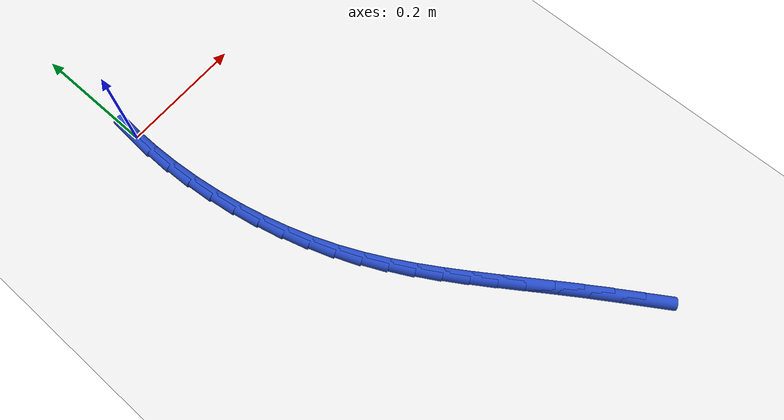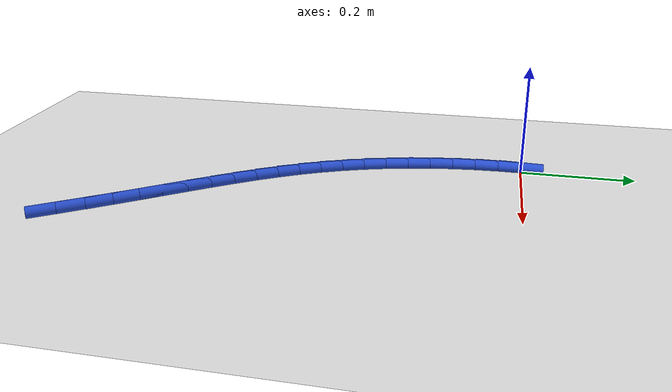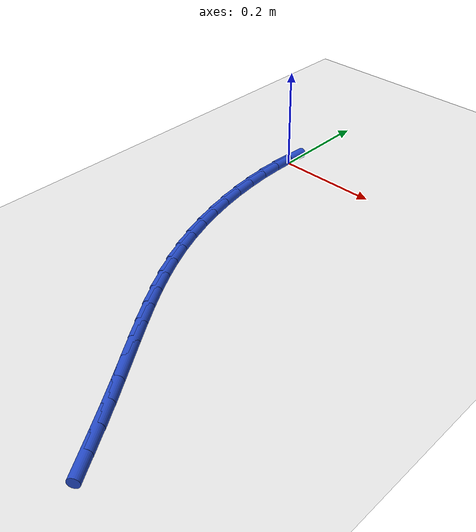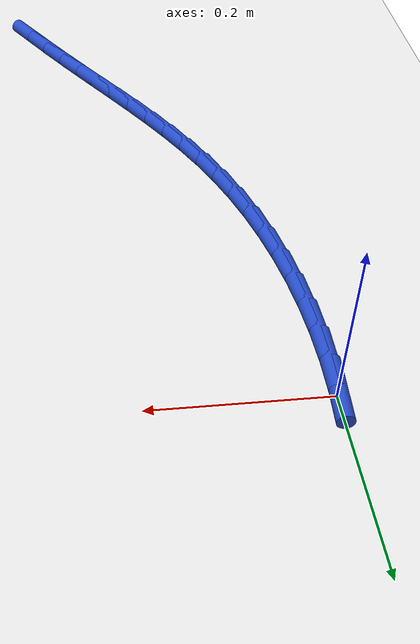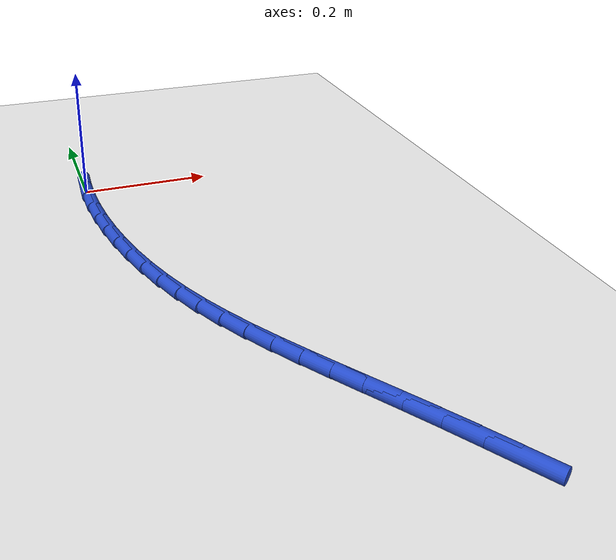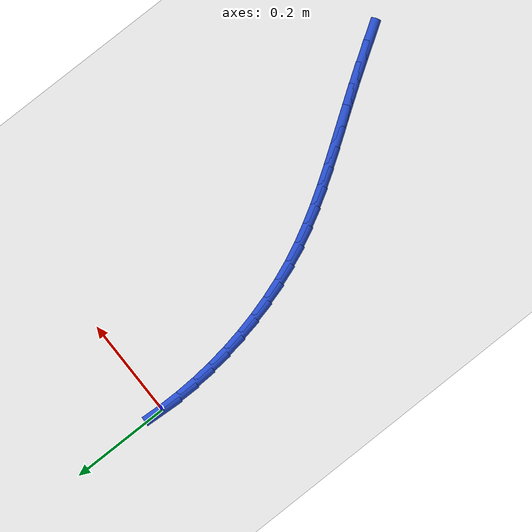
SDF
<sdf version="1.6">
 <world name="default">
  <model name="ground_plane">
   <static>1</static>
   <link name="link">
    <collision name="collision">
     <geometry><plane><normal>0 0 1</normal><size>100 100</size></plane></geometry>
     <surface><friction><ode><mu>100</mu><mu2>50</mu2></ode></friction></surface>
    </collision>
    <visual name="visual">
     <cast_shadows>0</cast_shadows>
     <geometry><plane><normal>0 0 1</normal><size>100 100</size></plane></geometry>
     <material>
      <script><uri>file://media/materials/scripts/gazebo.material</uri><name>Gazebo/WhiteGlow</name></script>
     </material>
    </visual>
   </link>
  </model>
  <model name="line">
   <link name="link_0">
    <pose>-5.204170427930421e-18 -4.163336342344337e-17 0.01 0 1.57 1.513905280434671</pose>
    <collision name="collision">
     <geometry><cylinder><radius>0.01</radius><length>0.08</length></cylinder></geometry>
    </collision>
    <visual name="visual">
     <material>
      <script><name>Gazebo/Blue</name><uri>file://media/materials/scripts/gazebo.material</uri></script>
     </material>
     <geometry><cylinder><radius>0.01</radius><length>0.08</length></cylinder></geometry>
    </visual>
   </link>
   <link name="link_150">
    <pose>0.3100594952932614 -0.7491291641938616 0.01 0 1.57 -0.9974807160864163</pose>
    <collision name="collision">
     <geometry><cylinder><radius>0.01</radius><length>0.08</length></cylinder></geometry>
    </collision>
    <visual name="visual">
     <material>
      <script><name>Gazebo/Blue</name><uri>file://media/materials/scripts/gazebo.material</uri></script>
     </material>
     <geometry><cylinder><radius>0.01</radius><length>0.08</length></cylinder></geometry>
    </visual>
   </link>
   <link name="link_151">
    <pose>0.28534716758128637 -0.7108544248788192 0.01 0 1.57 -0.9905500715952159</pose>
    <collision name="collision">
     <geometry><cylinder><radius>0.01</radius><length>0.08</length></cylinder></geometry>
    </collision>
    <visual name="visual">
     <material>
      <script><name>Gazebo/Blue</name><uri>file://media/materials/scripts/gazebo.material</uri></script>
     </material>
     <geometry><cylinder><radius>0.01</radius><length>0.08</length></cylinder></geometry>
    </visual>
   </link>
   <link name="link_152">
    <pose>0.2608267959370967 -0.6734484658540867 0.01 0 1.57 -0.9774261400104594</pose>
    <collision name="collision">
     <geometry><cylinder><radius>0.01</radius><length>0.08</length></cylinder></geometry>
    </collision>
    <visual name="visual">
     <material>
      <script><name>Gazebo/Blue</name><uri>file://media/materials/scripts/gazebo.material</uri></script>
     </material>
     <geometry><cylinder><radius>0.01</radius><length>0.08</length></cylinder></geometry>
    </visual>
   </link>
   <link name="link_153">
    <pose>0.2364460606499691 -0.6372992832214955 0.01 0 1.57 -0.9686650904051104</pose>
    <collision name="collision">
     <geometry><cylinder><radius>0.01</radius><length>0.08</length></cylinder></geometry>
    </collision>
    <visual name="visual">
     <material>
      <script><name>Gazebo/Blue</name><uri>file://media/materials/scripts/gazebo.material</uri></script>
     </material>
     <geometry><cylinder><radius>0.01</radius><length>0.08</length></cylinder></geometry>
    </visual>
   </link>
   <link name="link_154">
    <pose>0.21234701725039 -0.6022344049530903 0.01 0 1.57 -0.9674593233168493</pose>
    <collision name="collision">
     <geometry><cylinder><radius>0.01</radius><length>0.08</length></cylinder></geometry>
    </collision>
    <visual name="visual">
     <material>
      <script><name>Gazebo/Blue</name><uri>file://media/materials/scripts/gazebo.material</uri></script>
     </material>
     <geometry><cylinder><radius>0.01</radius><length>0.08</length></cylinder></geometry>
    </visual>
   </link>
   <link name="link_155">
    <pose>0.18871934565181941 -0.5679440372679354 0.01 0 1.57 -0.9743239694928912</pose>
    <collision name="collision">
     <geometry><cylinder><radius>0.01</radius><length>0.08</length></cylinder></geometry>
    </collision>
    <visual name="visual">
     <material>
      <script><name>Gazebo/Blue</name><uri>file://media/materials/scripts/gazebo.material</uri></script>
     </material>
     <geometry><cylinder><radius>0.01</radius><length>0.08</length></cylinder></geometry>
    </visual>
   </link>
   <link name="link_156">
    <pose>0.16575272576771746 -0.5341183863850956 0.01 0 1.57 -0.9896358352755945</pose>
    <collision name="collision">
     <geometry><cylinder><radius>0.01</radius><length>0.08</length></cylinder></geometry>
    </collision>
    <visual name="visual">
     <material>
      <script><name>Gazebo/Blue</name><uri>file://media/materials/scripts/gazebo.material</uri></script>
     </material>
     <geometry><cylinder><radius>0.01</radius><length>0.08</length></cylinder></geometry>
    </visual>
   </link>
   <link name="link_157">
    <pose>0.1436368375115444 -0.5004476585236358 0.01 0 1.57 -1.013591170763853</pose>
    <collision name="collision">
     <geometry><cylinder><radius>0.01</radius><length>0.08</length></cylinder></geometry>
    </collision>
    <visual name="visual">
     <material>
      <script><name>Gazebo/Blue</name><uri>file://media/materials/scripts/gazebo.material</uri></script>
     </material>
     <geometry><cylinder><radius>0.01</radius><length>0.08</length></cylinder></geometry>
    </visual>
   </link>
   <link name="link_158">
    <pose>0.12256136079676021 -0.4666220599026205 0.01 0 1.57 -1.046150673217274</pose>
    <collision name="collision">
     <geometry><cylinder><radius>0.01</radius><length>0.08</length></cylinder></geometry>
    </collision>
    <visual name="visual">
     <material>
      <script><name>Gazebo/Blue</name><uri>file://media/materials/scripts/gazebo.material</uri></script>
     </material>
     <geometry><cylinder><radius>0.01</radius><length>0.08</length></cylinder></geometry>
    </visual>
   </link>
   <link name="link_159">
    <pose>0.10271597553682593 -0.432331796741116 0.01 0 1.57 -1.0869774925672433</pose>
    <collision name="collision">
     <geometry><cylinder><radius>0.01</radius><length>0.08</length></cylinder></geometry>
    </collision>
    <visual name="visual">
     <material>
      <script><name>Gazebo/Blue</name><uri>file://media/materials/scripts/gazebo.material</uri></script>
     </material>
     <geometry><cylinder><radius>0.01</radius><length>0.08</length></cylinder></geometry>
    </visual>
   </link>
   <link name="link_160">
    <pose>0.08429036164520141 -0.39726707525818644 0.01 0 1.57 -1.1353819531871396</pose>
    <collision name="collision">
     <geometry><cylinder><radius>0.01</radius><length>0.08</length></cylinder></geometry>
    </collision>
    <visual name="visual">
     <material>
      <script><name>Gazebo/Blue</name><uri>file://media/materials/scripts/gazebo.material</uri></script>
     </material>
     <geometry><cylinder><radius>0.01</radius><length>0.08</length></cylinder></geometry>
    </visual>
   </link>
   <link name="link_161">
    <pose>0.06747419903431658 -0.3611181016762255 0.01 0 1.57 -1.188845280688764</pose>
    <collision name="collision">
     <geometry><cylinder><radius>0.01</radius><length>0.08</length></cylinder></geometry>
    </collision>
    <visual name="visual">
     <material>
      <script><name>Gazebo/Blue</name><uri>file://media/materials/scripts/gazebo.material</uri></script>
     </material>
     <geometry><cylinder><radius>0.01</radius><length>0.08</length></cylinder></geometry>
    </visual>
   </link>
   <link name="link_162">
    <pose>0.052429692340949956 -0.32366384190382774 0.01 0 1.57 -1.2410739635116292</pose>
    <collision name="collision">
     <geometry><cylinder><radius>0.01</radius><length>0.08</length></cylinder></geometry>
    </collision>
    <visual name="visual">
     <material>
      <script><name>Gazebo/Blue</name><uri>file://media/materials/scripts/gazebo.material</uri></script>
     </material>
     <geometry><cylinder><radius>0.01</radius><length>0.08</length></cylinder></geometry>
    </visual>
   </link>
   <link name="link_163">
    <pose>0.03921024681960333 -0.28503474145445884 0.01 0 1.57 -1.2911548568019149</pose>
    <collision name="collision">
     <geometry><cylinder><radius>0.01</radius><length>0.08</length></cylinder></geometry>
    </collision>
    <visual name="visual">
     <material>
      <script><name>Gazebo/Blue</name><uri>file://media/materials/scripts/gazebo.material</uri></script>
     </material>
     <geometry><cylinder><radius>0.01</radius><length>0.08</length></cylinder></geometry>
    </visual>
   </link>
   <link name="link_164">
    <pose>0.02784234055376833 -0.245448234859624 0.01 0 1.57 -1.3396749773270071</pose>
    <collision name="collision">
     <geometry><cylinder><radius>0.01</radius><length>0.08</length></cylinder></geometry>
    </collision>
    <visual name="visual">
     <material>
      <script><name>Gazebo/Blue</name><uri>file://media/materials/scripts/gazebo.material</uri></script>
     </material>
     <geometry><cylinder><radius>0.01</radius><length>0.08</length></cylinder></geometry>
    </visual>
   </link>
   <link name="link_165">
    <pose>0.018352451626935808 -0.20512175665082555 0.01 0 1.57 -1.387194167174653</pose>
    <collision name="collision">
     <geometry><cylinder><radius>0.01</radius><length>0.08</length></cylinder></geometry>
    </collision>
    <visual name="visual">
     <material>
      <script><name>Gazebo/Blue</name><uri>file://media/materials/scripts/gazebo.material</uri></script>
     </material>
     <geometry><cylinder><radius>0.01</radius><length>0.08</length></cylinder></geometry>
    </visual>
   </link>
   <link name="link_166">
    <pose>0.010767058122596904 -0.1642727413595671 0.01 0 1.57 -1.4342550255462934</pose>
    <collision name="collision">
     <geometry><cylinder><radius>0.01</radius><length>0.08</length></cylinder></geometry>
    </collision>
    <visual name="visual">
     <material>
      <script><name>Gazebo/Blue</name><uri>file://media/materials/scripts/gazebo.material</uri></script>
     </material>
     <geometry><cylinder><radius>0.01</radius><length>0.08</length></cylinder></geometry>
    </visual>
   </link>
   <link name="link_167">
    <pose>0.005112638124242733 -0.123118623517352 0.01 0 1.57 -1.4813939551621784</pose>
    <collision name="collision">
     <geometry><cylinder><radius>0.01</radius><length>0.08</length></cylinder></geometry>
    </collision>
    <visual name="visual">
     <material>
      <script><name>Gazebo/Blue</name><uri>file://media/materials/scripts/gazebo.material</uri></script>
     </material>
     <geometry><cylinder><radius>0.01</radius><length>0.08</length></cylinder></geometry>
    </visual>
   </link>
   <link name="link_168">
    <pose>0.0014156697153643863 -0.08187683765568286 0.01 0 1.57 -1.5291528267019054</pose>
    <collision name="collision">
     <geometry><cylinder><radius>0.01</radius><length>0.08</length></cylinder></geometry>
    </collision>
    <visual name="visual">
     <material>
      <script><name>Gazebo/Blue</name><uri>file://media/materials/scripts/gazebo.material</uri></script>
     </material>
     <geometry><cylinder><radius>0.01</radius><length>0.08</length></cylinder></geometry>
    </visual>
   </link>
   <link name="link_169">
    <pose>-0.0002973690205468737 -0.04076481830606464 0.01 0 1.57 1.5635017095635002</pose>
    <collision name="collision">
     <geometry><cylinder><radius>0.01</radius><length>0.08</length></cylinder></geometry>
    </collision>
    <visual name="visual">
     <material>
      <script><name>Gazebo/Blue</name><uri>file://media/materials/scripts/gazebo.material</uri></script>
     </material>
     <geometry><cylinder><radius>0.01</radius><length>0.08</length></cylinder></geometry>
    </visual>
   </link>
  </model>
 </world>
</sdf>
